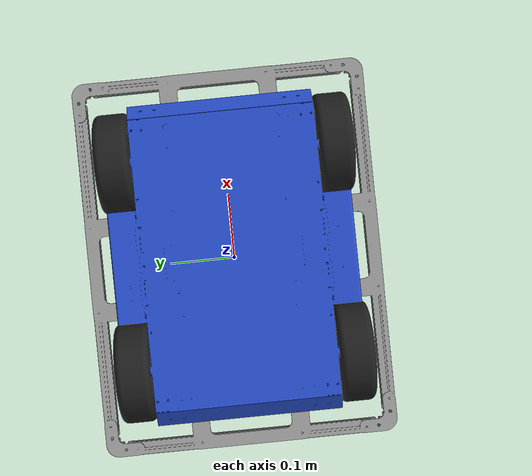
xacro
<?xml version="1.0" ?>
<robot name="amr" xmlns:xacro="http://ros.org/wiki/xacro">
  <xacro:include filename="$(find amr_description)/urdf/amr.gazebo_blue.xacro"/>

  <link name="base_link">
    <visual>
      <origin xyz="0 0 0" rpy="0 0 0"/>
      <geometry>
        <mesh filename="package://amr_description/meshes/base.stl" scale="0.001 0.001 0.001"/>
      </geometry>
    </visual>

    <collision>
      <origin xyz="0.0 0 0.07" rpy="0 0 0"/>
      <geometry>
        <box size="0.48 0.36 0.14"/>
      </geometry>
    </collision>

    <inertial>
      <origin xyz="0 0 0.0" rpy="0 0 0"/>
      <mass value="40"/>
      <inertia ixx="0.33" ixy="0" ixz="0" iyy="0.54" iyz="0" izz="0.77"/>
    </inertial>
  </link>

  <joint name="bumper_joint" type="fixed">
    <parent link="base_link"/>
    <child link="bumper_link"/>
    <origin xyz="0 0 0" rpy="0 0 0"/>
  </joint>

  <link name="bumper_link">
    <visual>
      <origin xyz="0 0 0" rpy="0 0 0"/>
      <geometry>
        <mesh filename="package://amr_description/meshes/bumper.stl" scale="0.001 0.001 0.001"/>
      </geometry>
    </visual>

    <collision>
      <origin xyz="0 0 -0.011" rpy="0 0 0"/>
      <geometry>
        <box size="0.59 0.46 0.022"/>
      </geometry>
    </collision>

    <inertial>
      <origin xyz="0 0 0" rpy="0 0 0"/>
      <mass value="2.0"/>
      <inertia ixx="0.1" ixy="0" ixz="0" iyy="0.15" iyz="0" izz="0.2"/>
    </inertial>
  </link>
  <joint name="wheel_fl_axle_joint" type="fixed">
      <origin xyz="0.161 0.167 0.036" rpy="0 0 0"/>
      <parent link="base_link"/>
      <child link="wheel_fl_axle_link"/>
  </joint>

  <link name="wheel_fl_axle_link">
    <inertial>
      <mass value="0.1"/>
      <origin xyz="0 0 0"/>
      <inertia ixx="1.0" ixy="0.0" ixz="0.0" iyy="1.0" iyz="0.0" izz="1.0"/>
    </inertial>

    <collision>
        <origin xyz="0 0 0" rpy="1.57 0 0"/>
        <geometry>
        <cylinder length="0.03" radius="0.01"/>
      </geometry>
    </collision>
  </link>

  <joint name="wheel_fl_joint" type="continuous">
    <parent link="wheel_fl_axle_link"/>
    <child link="wheel_fl_link"/>
    <origin xyz="0 0 0" rpy="0 0 0"/>
    <axis xyz="0 1 0"/>
    <dynamics damping="0.02" friction="0.01"/>
  </joint>

  <link name="wheel_fl_link">
    <visual>
      <origin xyz="0 0 0" rpy="0 0 0"/>
      <geometry>
        <mesh filename="package://amr_description/meshes/wheel.stl" scale="0.001 0.001 0.001"/>
      </geometry>
    </visual>

    <collision>
      <origin xyz="0 0 0" rpy="1.57 0 0"/>
      <geometry>
        <cylinder length="0.053" radius="0.072"/>
      </geometry>
    </collision>

    <inertial>
      <origin xyz="0 0 0" />
      <mass value="1.12" />
      <inertia ixx="0.0012" ixy="0" ixz="0.0" iyy="0.0021" iyz="0" izz="0.0012"/>
    </inertial>
  </link>

  <joint name="wheel_fr_axle_joint" type="fixed">
      <origin xyz="0.161 -0.167 0.036" rpy="0 0 0"/>
      <parent link="base_link"/>
      <child link="wheel_fr_axle_link"/>
  </joint>

  <link name="wheel_fr_axle_link">
    <inertial>
      <mass value="0.1"/>
      <origin xyz="0 0 0"/>
      <inertia ixx="1.0" ixy="0.0" ixz="0.0" iyy="1.0" iyz="0.0" izz="1.0"/>
    </inertial>

    <collision>
        <origin xyz="0 0 0" rpy="1.57 0 0"/>
        <geometry>
        <cylinder length="0.03" radius="0.01"/>
      </geometry>
    </collision>
  </link>

  <joint name="wheel_fr_joint" type="continuous">
    <parent link="wheel_fr_axle_link"/>
    <child link="wheel_fr_link"/>
    <origin xyz="0 0 0" rpy="0 0 0"/>
    <axis xyz="0 1 0"/>
    <dynamics damping="0.02" friction="0.01"/>
  </joint>

  <link name="wheel_fr_link">
    <visual>
      <origin xyz="0 0 0" rpy="0 0 0"/>
      <geometry>
        <mesh filename="package://amr_description/meshes/wheel.stl" scale="0.001 0.001 0.001"/>
      </geometry>
    </visual>

    <collision>
      <origin xyz="0 0 0" rpy="1.57 0 0"/>
      <geometry>
        <cylinder length="0.053" radius="0.072"/>
      </geometry>
    </collision>

    <inertial>
      <origin xyz="0 0 0" />
      <mass value="1.12" />
      <inertia ixx="0.0012" ixy="0" ixz="0.0" iyy="0.0021" iyz="0" izz="0.0012"/>
    </inertial>
  </link>

  <joint name="wheel_rl_axle_joint" type="fixed">
      <origin xyz="-0.161 0.167 0.036" rpy="0 0 0"/>
      <parent link="base_link"/>
      <child link="wheel_rl_axle_link"/>
  </joint>

  <link name="wheel_rl_axle_link">
    <inertial>
      <mass value="0.1"/>
      <origin xyz="0 0 0"/>
      <inertia ixx="1.0" ixy="0.0" ixz="0.0" iyy="1.0" iyz="0.0" izz="1.0"/>
    </inertial>
    <collision>
        <origin xyz="0 0 0" rpy="1.57 0 0"/>
        <geometry>
        <cylinder length="0.03" radius="0.01"/>
      </geometry>
    </collision>
  </link>

  <joint name="wheel_rl_joint" type="continuous">
    <parent link="wheel_rl_axle_link"/>
    <child link="wheel_rl_link"/>
    <origin xyz="0 0 0" rpy="0 0 0"/>
    <axis xyz="0 1 0"/>
    <dynamics damping="0.02" friction="0.01"/>
  </joint>

  <link name="wheel_rl_link">
    <visual>
      <origin xyz="0 0 0" rpy="0 0 0"/>
      <geometry>
        <mesh filename="package://amr_description/meshes/wheel.stl" scale="0.001 0.001 0.001"/>
      </geometry>
    </visual>

    <collision>
      <origin xyz="0 0 0" rpy="1.57 0 0"/>
      <geometry>
        <cylinder length="0.053" radius="0.072"/>
      </geometry>
    </collision>

    <inertial>
      <origin xyz="0 0 0" />
      <mass value="1.12" />
      <inertia ixx="0.0012" ixy="0" ixz="0.0" iyy="0.0021" iyz="0" izz="0.0012"/>
    </inertial>
  </link>

  <joint name="wheel_rr_axle_joint" type="fixed">
      <origin xyz="-0.161 -0.167 0.036" rpy="0 0 0"/>
      <parent link="base_link"/>
      <child link="wheel_rr_axle_link"/>
  </joint>

  <link name="wheel_rr_axle_link">
    <inertial>
      <mass value="0.1"/>
      <origin xyz="0 0 0"/>
      <inertia ixx="1.0" ixy="0.0" ixz="0.0" iyy="1.0" iyz="0.0" izz="1.0"/>
    </inertial>
    <collision>
        <origin xyz="0 0 0" rpy="1.57 0 0"/>
        <geometry>
          <cylinder length="0.03" radius="0.01"/>
        </geometry>
    </collision>
  </link>

  <joint name="wheel_rr_joint" type="continuous">
    <parent link="wheel_rr_axle_link"/>
    <child link="wheel_rr_link"/>
    <origin xyz="0 0 0" rpy="0 0 0"/>
    <axis xyz="0 1 0"/>
    <dynamics damping="0.02" friction="0.01"/>
  </joint>

  <link name="wheel_rr_link">
    <visual>
      <origin xyz="0 0 0" rpy="0 0 0"/>
      <geometry>
        <mesh filename="package://amr_description/meshes/wheel.stl" scale="0.001 0.001 0.001"/>
      </geometry>
    </visual>

    <collision>
      <origin xyz="0 0 0" rpy="1.57 0 0"/>
      <geometry>
        <cylinder length="0.053" radius="0.072"/>
      </geometry>
    </collision>

    <inertial>
      <origin xyz="0 0 0" />
      <mass value="1.12" />
      <inertia ixx="0.0012" ixy="0" ixz="0.0" iyy="0.0021" iyz="0" izz="0.0012"/>
    </inertial>
  </link>

  <joint name="imu_joint" type="fixed">
    <parent link="base_link"/>
    <child link="imu_link"/>
    <origin xyz="0 0 0.01" rpy="0 0 0"/>
  </joint>

  <link name="imu_link"/>
<!--  modify height of rp lidar here -->
</robot>
